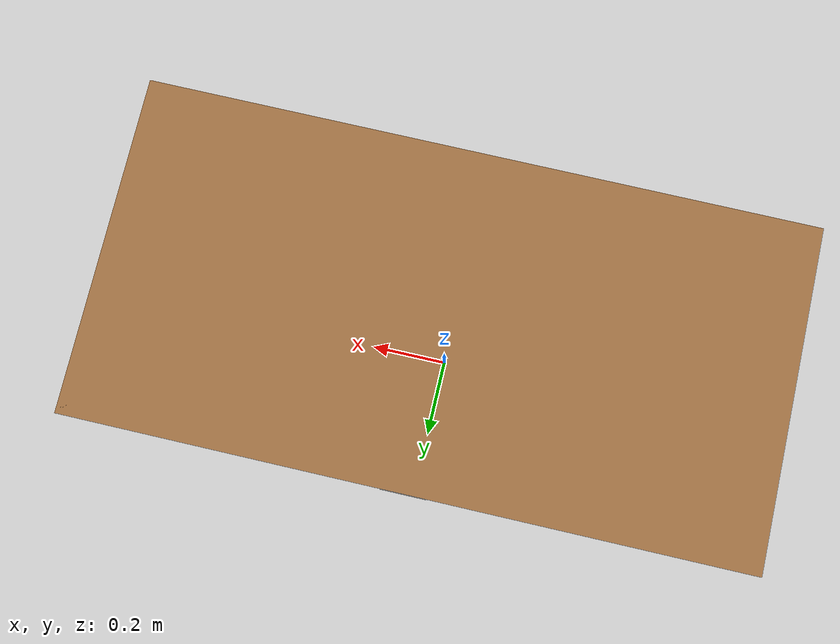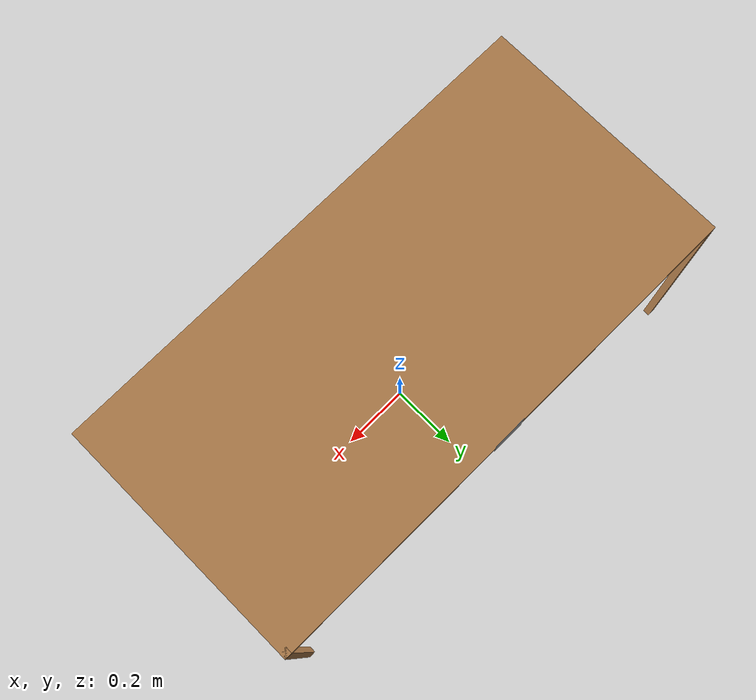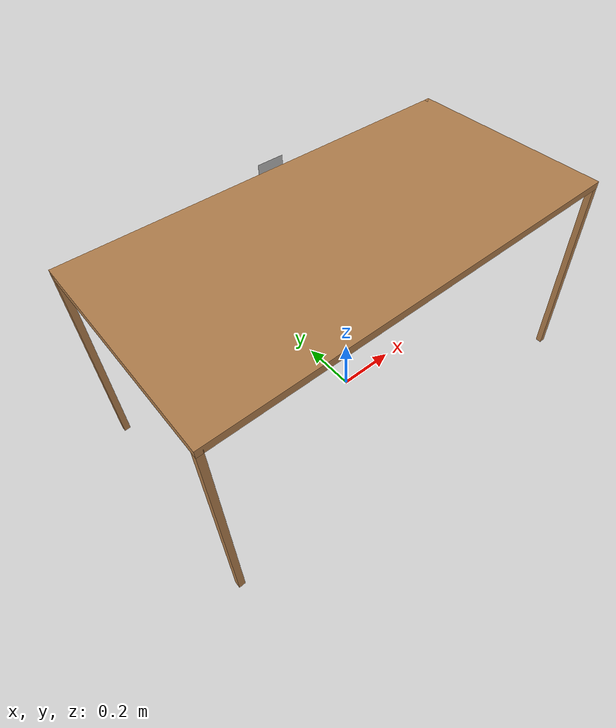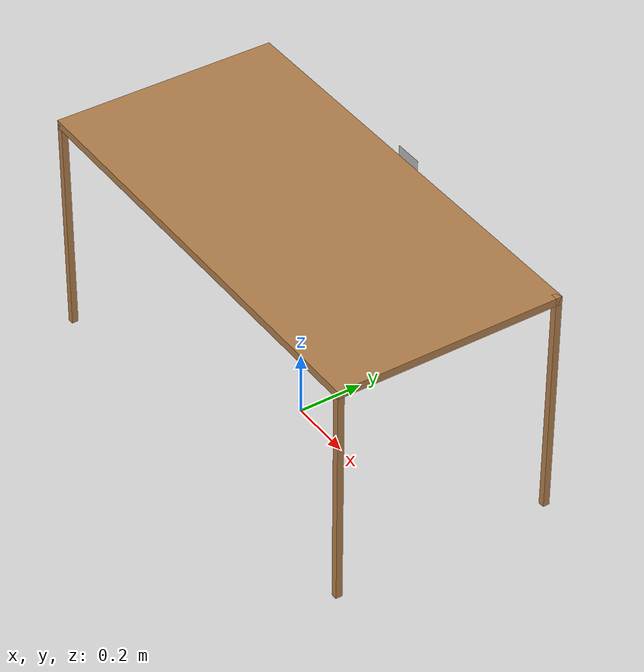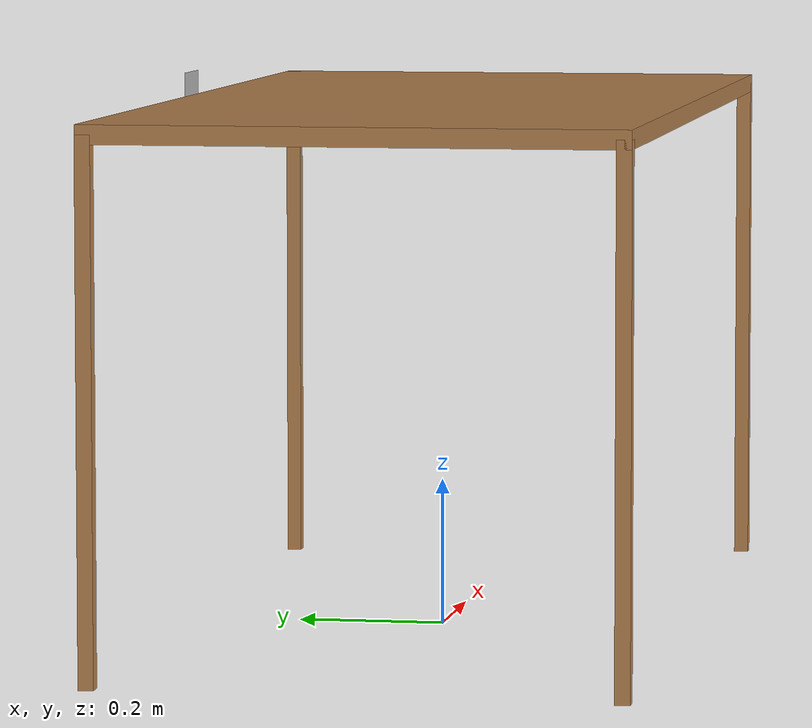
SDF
<?xml version="1.0" ?>
<sdf version='1.4'>
    <model name='*meeting_room_table'>
        <pose>0.000000 0.000000 0.000000 0.000000 0.000000 0.000000</pose>
        <link name='*meeting_room_table_top'>
            <pose>0.000000 0.000000 0.712500 0.000000 -0.000000 0.000000</pose>
            <collision name='collision'>
                <geometry>
                    <box>
                        <size>1.400000 0.700000 0.025000</size>
                    </box>
                </geometry>
            </collision>
            <visual name='visual'>
                <geometry>
                    <box>
                        <size>1.400000 0.700000 0.025000</size>
                    </box>
                </geometry>
                <material>
                    <script>
                        <uri>model://base_materials/wood/scripts/wood.material</uri>
                        <name>base_materials/dark_wood</name>
                    </script>
                </material>
            </visual>

	    <visual name='Apriltag_00001'>
	      <pose>0 0.35 0 0 1.57 -1.57</pose>
	      <geometry>
	        <box>
	          <size>0.09 0.09 0.0001</size>
	        </box>
	      </geometry>
	      <material>
	        <script>
	          <uri>model://meeting_room_table/materials/scripts</uri>
	          <uri>model://meeting_room_table/materials/textures</uri>
	          <name>marker/Apriltag36_11_00001</name>
	        </script>
	      </material>
	    </visual>
        </link>
        <link name='*meeting_room_table_leg1'>
            <pose>0.690000 0.340000 0.362500 0.000000 -0.000000 0.000000</pose>
            <collision name='collision'>
                <geometry>
                    <box>
                        <size>0.020000 0.020000 0.725000</size>
                    </box>
                </geometry>
            </collision>
            <visual name='visual'>
                <geometry>
                    <box>
                        <size>0.020000 0.020000 0.725000</size>
                    </box>
                </geometry>
                <material>
                    <script>
                        <uri>model://base_materials/wood/scripts/wood.material</uri>
                        <name>base_materials/dark_wood</name>
                    </script>
                </material>
            </visual>
        </link>
        <link name='*meeting_room_table_leg2'>
            <pose>-0.690000 0.340000 0.362500 0.000000 -0.000000 0.000000</pose>
            <collision name='collision'>
                <geometry>
                    <box>
                        <size>0.020000 0.020000 0.700000</size>
                    </box>
                </geometry>
            </collision>
            <visual name='visual'>
                <geometry>
                    <box>
                        <size>0.020000 0.020000 0.700000</size>
                    </box>
                </geometry>
                <material>
                    <script>
                        <uri>model://base_materials/wood/scripts/wood.material</uri>
                        <name>base_materials/dark_wood</name>
                    </script>
                </material>
            </visual>
        </link>
        <link name='*meeting_room_table_leg3'>
            <pose>0.690000 -0.340000 0.362500 0.000000 -0.000000 0.000000</pose>
            <collision name='collision'>
                <geometry>
                    <box>
                        <size>0.020000 0.020000 0.700000</size>
                    </box>
                </geometry>
            </collision>
            <visual name='visual'>
                <geometry>
                    <box>
                        <size>0.020000 0.020000 0.700000</size>
                    </box>
                </geometry>
                <material>
                    <script>
                        <uri>model://base_materials/wood/scripts/wood.material</uri>
                        <name>base_materials/dark_wood</name>
                    </script>
                </material>
            </visual>
        </link>
        <link name='*meeting_room_table_leg4'>
            <pose>-0.690000 -0.340000 0.362500 0.000000 -0.000000 0.000000</pose>
            <collision name='collision'>
                <geometry>
                    <box>
                        <size>0.020000 0.020000 0.700000</size>
                    </box>
                </geometry>
            </collision>
            <visual name='visual'>
                <geometry>
                    <box>
                        <size>0.020000 0.020000 0.700000</size>
                    </box>
                </geometry>
                <material>
                    <script>
                        <uri>model://base_materials/wood/scripts/wood.material</uri>
                        <name>base_materials/dark_wood</name>
                    </script>
                </material>
            </visual>
        </link>
        <static>1</static>
    </model>
</sdf>
